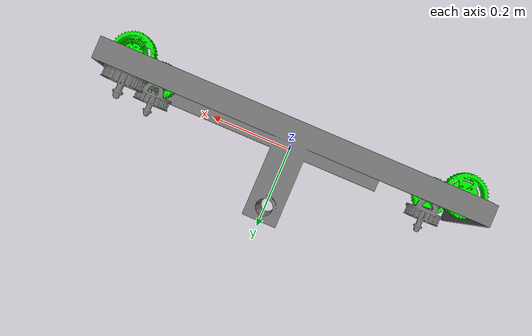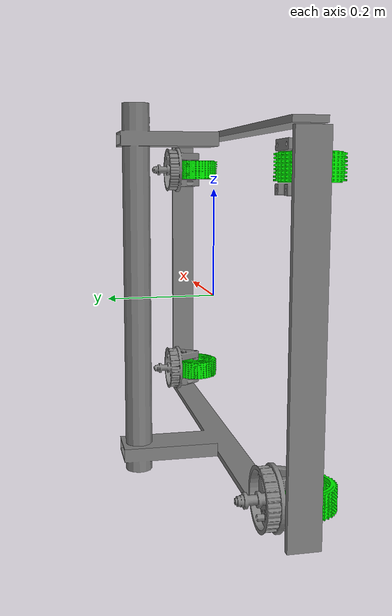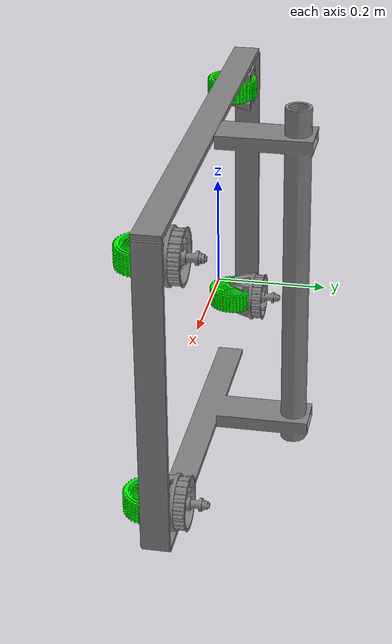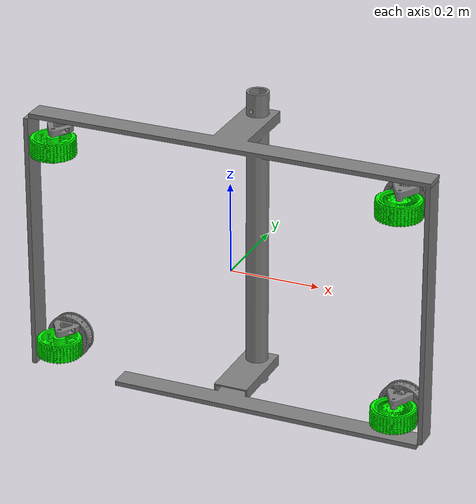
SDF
<?xml version="1.0" encoding="utf-8"?>
<sdf version="1.5">
  <model name="SimSwerveBot3">
    <pose>0 0 -1.09292752624527E-15 0 0 0</pose>
    <plugin name="clock" filename="libgz_clock.so">
      <topic>/gazebo/frc/time</topic>
    </plugin>
    <link name="Body">
      <gravity>1</gravity>
      <self_collide>0</self_collide>
      <pose>0.0103185969497103 0.0270555915724389 0.00229909099591104 0 0 0</pose>
      <must_be_base_link>1</must_be_base_link>
      <velocity_decay>
        <linear>0</linear>
        <angular>0</angular>
      </velocity_decay>
      <inertial>
        <mass>100</mass>
        <pose>0 0 0 0 0 0</pose>
        <inertia>
          <ixx>0.281462866767804</ixx>
          <ixy>0.00534071773862858</ixy>
          <ixz>0.00063191111485271</ixz>
          <iyy>0.688565334814199</iyy>
          <iyz>0.00210804924810935</iyz>
          <izz>0.474279088453001</izz>
        </inertia>
      </inertial>
      <collision name="Body_collision">
        <pose>-0.466812853283889 -0.02705559157244 -0.00301802987182291 0 0 0</pose>
        <geometry>
          <mesh>
            <scale>1 1 1</scale>
            <uri>model://SimSwerveBot3/meshes/Body_col.STL</uri>
          </mesh>
        </geometry>
        <surface>
          <contact>
            <ode />
          </contact>
          <friction>
            <ode>
              <mu>0</mu>
              <mu2>0</mu2>
            </ode>
          </friction>
        </surface>
      </collision>
      <visual name="Body_visual">
        <pose>-0.466812853283889 -0.02705559157244 -0.00301802987182291 0 0 0</pose>
        <material>
          <ambient>0.501960784313725 0.501960784313725 0.501960784313725 1</ambient>
          <diffuse>0.501960784313725 0.501960784313725 0.501960784313725 1</diffuse>
        </material>
        <geometry>
          <mesh>
            <scale>1 1 1</scale>
            <uri>model://SimSwerveBot3/meshes/Body.STL</uri>
          </mesh>
        </geometry>
      </visual>
    </link>

    <link name="FRdrive">
      <gravity>1</gravity>
      <self_collide>0</self_collide>
      <pose>0.363496387518542 0.00308940755423762 0.210899192814309 0 0 0</pose>
      <must_be_base_link>0</must_be_base_link>
      <velocity_decay>
        <linear>0</linear>
        <angular>0</angular>
      </velocity_decay>
      <inertial>
        <mass>0.657888054648102</mass>
        <pose>0 0 0 0 0 0</pose>
        <inertia>
          <ixx>0.00176096960655331</ixx>
          <ixy>3.4876847881195E-05</ixy>
          <ixz>0.000780859801168257</ixz>
          <iyy>0.00265420485611322</iyy>
          <iyz>3.74130649061973E-05</iyz>
          <izz>0.00176736703322897</izz>
        </inertia>
      </inertial>
      <visual name="FRdrive_visual">
        <pose>-0.81999064385272 -0.00308940755423872 -0.211618131690221 0 0 0</pose>
        <material>
          <ambient>0.501960784313725 0.501960784313725 0.501960784313725 1</ambient>
          <diffuse>0.501960784313725 0.501960784313725 0.501960784313725 1</diffuse>
        </material>
        <geometry>
          <mesh>
            <scale>1 1 1</scale>
            <uri>model://SimSwerveBot3/meshes/FRdrive.STL</uri>
          </mesh>
        </geometry>
      </visual>
    </link>
    <joint name="Body-FRdrive" type="revolute">
      <parent>Body</parent>
      <child>FRdrive</child>
      <pose>0.0270286124815718 -1.09208571005825E-11 138.360469452063 0 0 0</pose>
      <axis>
        <xyz>0 -1 0</xyz>
        <dynamics>
          <damping>1</damping>
          <friction>1</friction>
        </dynamics>
        <limit>
          <effort>50</effort>
        </limit>
      </axis>
    </joint>
    <link name="FRwheel">
      <gravity>1</gravity>
      <self_collide>0</self_collide>
      <pose>0.390524894652224 -0.045440778296 0.239779131380291 0 0 0</pose>
      <must_be_base_link>0</must_be_base_link>
      <velocity_decay>
        <linear>0</linear>
        <angular>0</angular>
      </velocity_decay>
      <inertial>
        <mass>0.123981366006226</mass>
        <pose>0 0 0 0 0 0</pose>
        <inertia>
          <ixx>3.88278352520219E-06</ixx>
          <ixy>2.45178744082116E-09</ixy>
          <ixz>3.03959796514531E-08</ixz>
          <iyy>3.86178892347252E-06</iyy>
          <iyz>1.19329957457669E-08</iyz>
          <izz>2.19913716679678E-08</izz>
        </inertia>
      </inertial>
      <collision name="FRwheel_collision">
        <pose>-0.847019150986402 0.0454407782959989 -0.240498070256203 0 0 0</pose>
        <geometry>
          <mesh>
            <scale>1 1 1</scale>
            <uri>model://SimSwerveBot3/meshes/FRwheel_col.STL</uri>
          </mesh>
        </geometry>
        <surface>
          <contact>
            <ode />
          </contact>
          <friction>
            <ode>
              <mu>0</mu>
              <mu2>0</mu2>
            </ode>
          </friction>
        </surface>
      </collision>
      <visual name="FRwheel_visual">
        <pose>-0.847019150986402 0.0454407782959989 -0.240498070256203 0 0 0</pose>
        <material>
          <ambient>0 1 0 1</ambient>
          <diffuse>0 1 0 1</diffuse>
        </material>
        <geometry>
          <mesh>
            <scale>1 1 1</scale>
            <uri>model://SimSwerveBot3/meshes/FRwheel.STL</uri>
          </mesh>
        </geometry>
      </visual>
    </link>
    <joint name="FRdrive-FRwheel" type="revolute">
      <parent>FRdrive</parent>
      <child>FRwheel</child>
      <pose>1.2563807359034E-05 0.000114295457507303 138.333243550245 0 0 0</pose>
      <axis>
        <xyz>0.00753194032505162 -5.39495021367634E-16 0.99997163453517</xyz>
        <dynamics>
          <damping>1</damping>
          <friction>1</friction>
        </dynamics>
        <limit>
          <effort>25</effort>
        </limit>
      </axis>
    </joint>
    <link name="FLdrive">
      <gravity>1</gravity>
      <self_collide>0</self_collide>
      <pose>0.390516175212258 -0.00398782218945136 -0.236504732283261 0 0 0</pose>
      <must_be_base_link>0</must_be_base_link>
      <velocity_decay>
        <linear>0</linear>
        <angular>0</angular>
      </velocity_decay>
      <inertial>
        <mass>0.104844245672399</mass>
        <pose>0 0 0 0 0 0</pose>
        <inertia>
          <ixx>8.02733542023956E-05</ixx>
          <ixy>7.99408983935354E-09</ixy>
          <ixz>2.15004488581546E-07</ixz>
          <iyy>3.94598209748503E-05</iyy>
          <iyz>1.46851676850662E-06</iyz>
          <izz>4.08158762844341E-05</izz>
        </inertia>
      </inertial>
      <visual name="FLdrive_visual">
        <pose>-0.847010431546437 0.00398782218945027 0.235785793407349 0 0 0</pose>
        <material>
          <ambient>0.501960784313725 0.501960784313725 0.501960784313725 1</ambient>
          <diffuse>0.501960784313725 0.501960784313725 0.501960784313725 1</diffuse>
        </material>
        <geometry>
          <mesh>
            <scale>1 1 1</scale>
            <uri>model://SimSwerveBot3/meshes/FLdrive.STL</uri>
          </mesh>
        </geometry>
      </visual>
    </link>
    <joint name="Body-FLdrive" type="revolute">
      <parent>Body</parent>
      <child>FLdrive</child>
      <pose>8.82478785446672E-06 -1.88252191613003E-14 138.331623377161 0 0 0</pose>
      <axis>
        <xyz>1.52655665885957E-16 -1 8.59873560937597E-30</xyz>
        <dynamics>
          <damping>1</damping>
          <friction>1</friction>
        </dynamics>
        <limit>
          <effort>50</effort>
        </limit>
      </axis>
    </joint>
    <link name="FLwheel">
      <gravity>1</gravity>
      <self_collide>0</self_collide>
      <pose>0.390549941149665 -0.0454363391768118 -0.236470756117954 0 0 0</pose>
      <must_be_base_link>0</must_be_base_link>
      <velocity_decay>
        <linear>0</linear>
        <angular>0</angular>
      </velocity_decay>
      <inertial>
        <mass>0.123981363237598</mass>
        <pose>0 0 0 0 0 0</pose>
        <inertia>
          <ixx>3.88123093123913E-06</ixx>
          <ixy>6.20012767170166E-09</ixy>
          <ixz>2.45786304027227E-08</ixz>
          <iyy>3.86342616154093E-06</iyy>
          <iyz>1.14534871757271E-08</iyz>
          <izz>2.19057994070499E-08</izz>
        </inertia>
      </inertial>
      <collision name="FLwheel_collision">
        <pose>-0.847044197483843 0.0454363391768107 0.235751817242042 0 0 0</pose>
        <geometry>
          <mesh>
            <scale>1 1 1</scale>
            <uri>model://SimSwerveBot3/meshes/FLwheel_col.STL</uri>
          </mesh>
        </geometry>
        <surface>
          <contact>
            <ode />
          </contact>
          <friction>
            <ode>
              <mu>0</mu>
              <mu2>0</mu2>
            </ode>
          </friction>
        </surface>
      </collision>
      <visual name="FLwheel_visual">
        <pose>-0.847044197483843 0.0454363391768107 0.235751817242042 0 0 0</pose>
        <material>
          <ambient>0 1 0 1</ambient>
          <diffuse>0 1 0 1</diffuse>
        </material>
        <geometry>
          <mesh>
            <scale>1 1 1</scale>
            <uri>model://SimSwerveBot3/meshes/FLwheel.STL</uri>
          </mesh>
        </geometry>
      </visual>
    </link>
    <joint name="FLdrive-FLwheel" type="revolute">
      <parent>FLdrive</parent>
      <child>FLwheel</child>
      <pose>-3.39534050320944E-05 0.000109856338368935 138.33324345988 0 0 0</pose>
      <axis>
        <xyz>-0.00544848904353874 5.39806568947221E-16 0.999985156873412</xyz>
        <dynamics>
          <damping>1</damping>
          <friction>1</friction>
        </dynamics>
        <limit>
          <effort>25</effort>
        </limit>
      </axis>
    </joint>
    <link name="BRdrive">
      <gravity>1</gravity>
      <self_collide>0</self_collide>
      <pose>-0.389820351374971 -0.0252568719347456 0.23794658223208 0 0 0</pose>
      <must_be_base_link>0</must_be_base_link>
      <velocity_decay>
        <linear>0</linear>
        <angular>0</angular>
      </velocity_decay>
      <inertial>
        <mass>0.0366045007681131</mass>
        <pose>0 0 0 0 0 0</pose>
        <inertia>
          <ixx>3.41504034558259E-05</ixx>
          <ixy>4.88097084483977E-09</ixy>
          <ixz>2.07634539991463E-07</ixz>
          <iyy>3.41328053798174E-05</iyy>
          <iyz>8.02347541431378E-07</iyz>
          <izz>2.01243083049774E-08</izz>
        </inertia>
      </inertial>
      <visual name="BRdrive_visual">
        <pose>-0.0666739049592076 0.0252568719347445 -0.238665521107992 0 0 0</pose>
        <material>
          <ambient>0.501960784313725 0.501960784313725 0.501960784313725 1</ambient>
          <diffuse>0.501960784313725 0.501960784313725 0.501960784313725 1</diffuse>
        </material>
        <geometry>
          <mesh>
            <scale>1 1 1</scale>
            <uri>model://SimSwerveBot3/meshes/BRdrive.STL</uri>
          </mesh>
        </geometry>
      </visual>
    </link>
    <joint name="Body-BRdrive" type="revolute">
      <parent>Body</parent>
      <child>BRdrive</child>
      <pose>1.09504079237599E-06 -1.5404344466674E-15 138.333422062645 0 0 0</pose>
      <axis>
        <xyz>-1.94289029309404E-16 -1 1.57772181044202E-30</xyz>
        <dynamics>
          <damping>1</damping>
          <friction>1</friction>
        </dynamics>
        <limit>
          <effort>50</effort>
        </limit>
      </axis>
    </joint>
    <link name="BRwheel">
      <gravity>1</gravity>
      <self_collide>0</self_collide>
      <pose>-0.38981675512866 -0.0454407782968198 0.236470870684926 0 0 0</pose>
      <must_be_base_link>0</must_be_base_link>
      <velocity_decay>
        <linear>0</linear>
        <angular>0</angular>
      </velocity_decay>
      <inertial>
        <mass>0.123981364545114</mass>
        <pose>0 0 0 0 0 0</pose>
        <inertia>
          <ixx>3.88286314957006E-06</ixx>
          <ixy>2.43450099757003E-09</ixy>
          <ixz>2.48038534874932E-08</ixz>
          <iyy>3.8617885958559E-06</iyy>
          <iyz>1.19365329137536E-08</iyz>
          <izz>2.1911419680857E-08</izz>
        </inertia>
      </inertial>
      <collision name="BRwheel_collision">
        <pose>-0.066677501205518 0.0454407782968187 -0.237189809560838 0 0 0</pose>
        <geometry>
          <mesh>
            <scale>1 1 1</scale>
            <uri>model://SimSwerveBot3/meshes/BRwheel_col.STL</uri>
          </mesh>
        </geometry>
        <surface>
          <contact>
            <ode />
          </contact>
          <friction>
            <ode>
              <mu>0</mu>
              <mu2>0</mu2>
            </ode>
          </friction>
        </surface>
      </collision>
      <visual name="BRwheel_visual">
        <pose>-0.066677501205518 0.0454407782968187 -0.237189809560838 0 0 0</pose>
        <material>
          <ambient>0 1 0 1</ambient>
          <diffuse>0 1 0 1</diffuse>
        </material>
        <geometry>
          <mesh>
            <scale>1 1 1</scale>
            <uri>model://SimSwerveBot3/meshes/BRwheel.STL</uri>
          </mesh>
        </geometry>
      </visual>
    </link>
    <joint name="BRdrive-BRwheel" type="revolute">
      <parent>BRdrive</parent>
      <child>BRwheel</child>
      <pose>-1.25639304104225E-05 0.000114295458376698 138.333243721312 0 0 0</pose>
      <axis>
        <xyz>-0.0060835652850518 5.44873555814072E-16 -0.999981494945493</xyz>
        <dynamics>
          <damping>1</damping>
          <friction>1</friction>
        </dynamics>
        <limit>
          <effort>25</effort>
        </limit>
      </axis>
    </joint>
    <link name="BLdrive">
      <gravity>1</gravity>
      <self_collide>0</self_collide>
      <pose>-0.389831464443077 -0.00398782097182753 -0.239745247576255 0 0 0</pose>
      <must_be_base_link>0</must_be_base_link>
      <velocity_decay>
        <linear>0</linear>
        <angular>0</angular>
      </velocity_decay>
      <inertial>
        <mass>0.104844240889755</mass>
        <pose>0 0 0 0 0 0</pose>
        <inertia>
          <ixx>8.02722768390511E-05</ixx>
          <ixy>1.10699316912706E-08</ixy>
          <ixz>2.97186563436984E-07</ixz>
          <iyy>3.94598136598907E-05</iyy>
          <iyz>1.46850166523728E-06</iyz>
          <izz>4.08169398786503E-05</izz>
        </inertia>
      </inertial>
      <visual name="BLdrive_visual">
        <pose>-0.0666627918911016 0.00398782097182643 0.239026308700343 0 0 0</pose>
        <material>
          <ambient>0.501960784313725 0.501960784313725 0.501960784313725 1</ambient>
          <diffuse>0.501960784313725 0.501960784313725 0.501960784313725 1</diffuse>
        </material>
        <geometry>
          <mesh>
            <scale>1 1 1</scale>
            <uri>model://SimSwerveBot3/meshes/BLdrive.STL</uri>
          </mesh>
        </geometry>
      </visual>
    </link>
    <joint name="Body-BLdrive" type="revolute">
      <parent>Body</parent>
      <child>BLdrive</child>
      <pose>1.22081088980014E-05 -1.84389346673253E-10 138.334863892454 0 0 0</pose>
      <axis>
        <xyz>-1.02695629777827E-15 -1 2.11988446961496E-17</xyz>
        <dynamics>
          <damping>1</damping>
          <friction>1</friction>
        </dynamics>
        <limit>
          <effort>50</effort>
        </limit>
      </axis>
    </joint>
    <link name="BLwheel">
      <gravity>1</gravity>
      <self_collide>0</self_collide>
      <pose>-0.389819150986402 -0.045440778296001 -0.239779131380316 0 0 0</pose>
      <must_be_base_link>0</must_be_base_link>
      <velocity_decay>
        <linear>0</linear>
        <angular>0</angular>
      </velocity_decay>
      <inertial>
        <mass>0.123981366006225</mass>
        <pose>0 0 0 0 0 0</pose>
        <inertia>
          <ixx>3.8827835252021E-06</ixx>
          <ixy>2.45178744083197E-09</ixy>
          <ixz>3.03959796515128E-08</ixz>
          <iyy>3.86178892347244E-06</iyy>
          <iyz>1.19329957459059E-08</iyz>
          <izz>2.19913716679634E-08</izz>
        </inertia>
      </inertial>
      <collision name="BLwheel_collision">
        <pose>-0.0666751053477765 0.0454407782959999 0.239060192504404 0 0 0</pose>
        <geometry>
          <mesh>
            <scale>1 1 1</scale>
            <uri>model://SimSwerveBot3/meshes/BLwheel_col.STL</uri>
          </mesh>
        </geometry>
        <surface>
          <contact>
            <ode />
          </contact>
          <friction>
            <ode>
              <mu>0</mu>
              <mu2>0</mu2>
            </ode>
          </friction>
        </surface>
      </collision>
      <visual name="BLwheel_visual">
        <pose>-0.0666751053477765 0.0454407782959999 0.239060192504404 0 0 0</pose>
        <material>
          <ambient>0 1 0 1</ambient>
          <diffuse>0 1 0 1</diffuse>
        </material>
        <geometry>
          <mesh>
            <scale>1 1 1</scale>
            <uri>model://SimSwerveBot3/meshes/BLwheel.STL</uri>
          </mesh>
        </geometry>
      </visual>
    </link>
    <joint name="BLdrive-BLwheel" type="revolute">
      <parent>BLdrive</parent>
      <child>BLwheel</child>
      <pose>-1.25638072460965E-05 0.000114295457557811 138.33324373951 0 0 0</pose>
      <axis>
        <xyz>-0.00753194032505203 -5.52958291197397E-16 -0.99997163453517</xyz>
        <dynamics>
          <damping>1</damping>
          <friction>1</friction>
        </dynamics>
        <limit>
          <effort>25</effort>
        </limit>
      </axis>
    </joint>

  </model>
</sdf>
